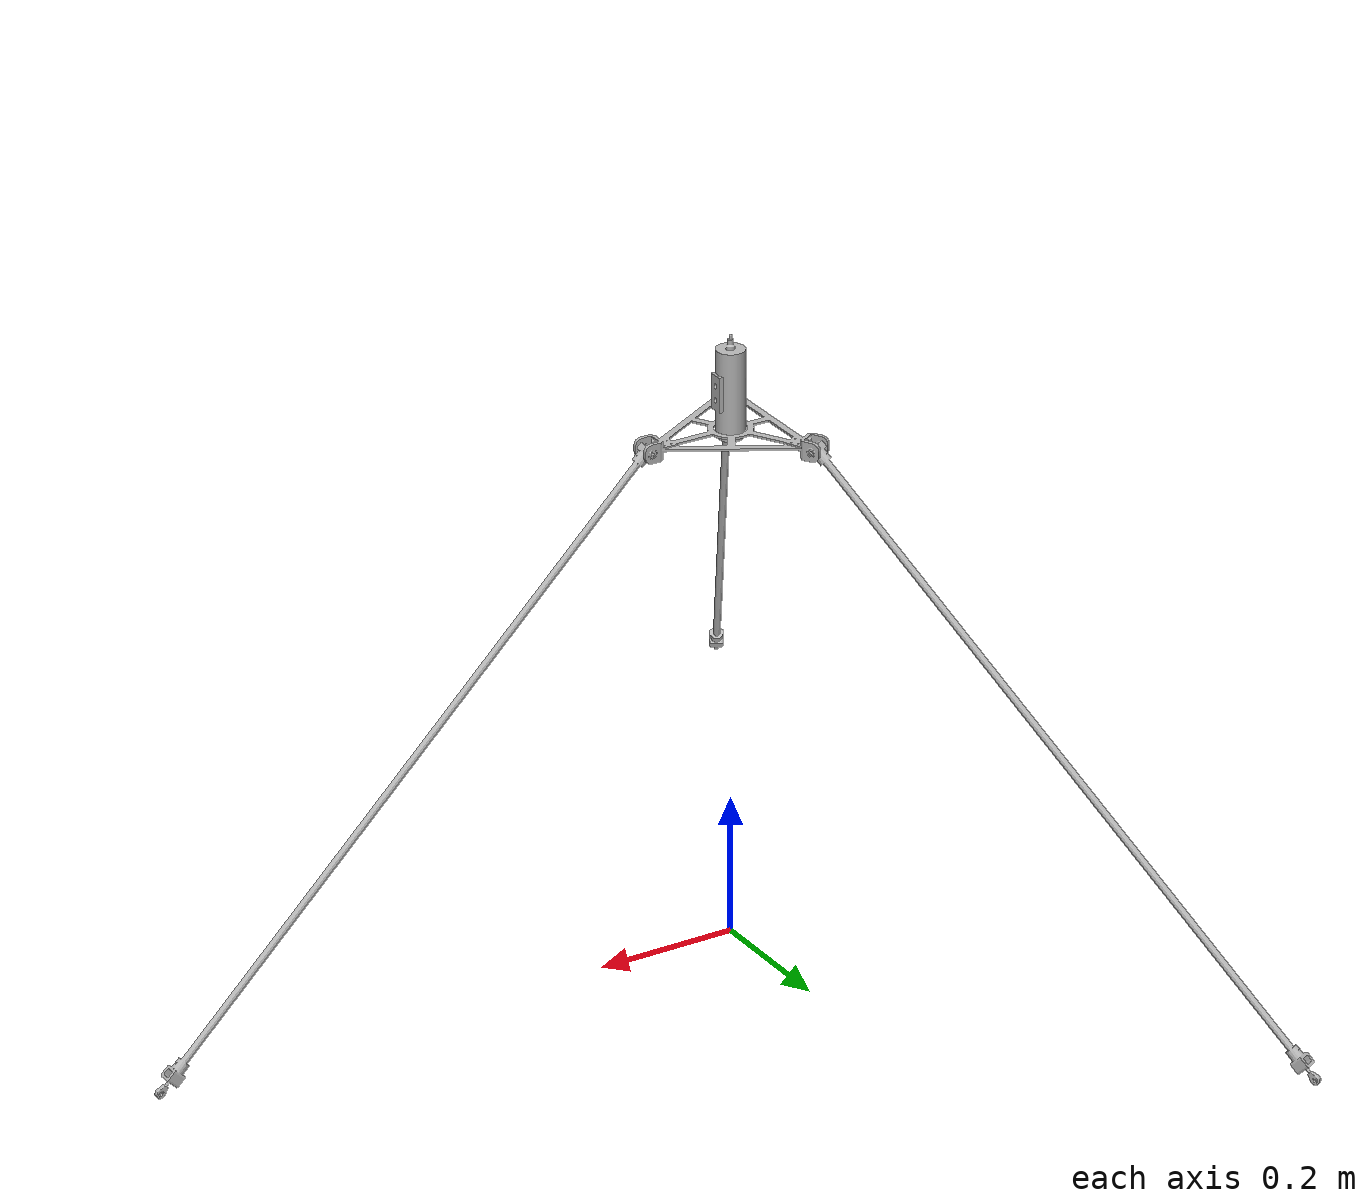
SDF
<sdf version='1.7'>
  <model name='fpr'>
    <link name="platform">
        <pose>0 0 0.7375123727775691 0 0 0</pose>
        <inertial>
            <pose>0 0 0 0 -0 0</pose>
            <mass>0.215</mass>
            <inertia>
              <ixx>5.427e-4</ixx>
              <ixy>0</ixy>
              <ixz>0</ixz>
              <iyy>5.427e-4</iyy>
              <iyz>0</iyz>
              <izz>0.001</izz>
            </inertia>
        </inertial>
        <visual name="platform_visual">
            <pose>0 0 0 0 -0 0</pose>
            <geometry>
                <mesh>
                    <scale>0.001 0.001 0.001</scale>
                    <uri>model://fpr_interaction/meshes/platform.stl</uri>
                </mesh>
            </geometry>
        </visual>
        <collision name='platform_inertia_collision'>
            <pose>0 0 0 0 0 0</pose>
            <geometry>
                <mesh>
                    <scale>0.001 0.001 0.001</scale>
                    <uri>model://fpr_interaction/meshes/platform.stl</uri>
                </mesh>
            </geometry>
        </collision>
        <visual name="tool_visual">
            <pose>0 0 0 0 0 0</pose>
            <geometry>
                <mesh>
                    <scale>0.001 0.001 0.001</scale>
                    <uri>model://fpr_interaction/meshes/tool.stl</uri>
                </mesh>
            </geometry>
        </visual>
        <collision name='tool_inertia_collision'>
            <pose>0 0 0.027 0 0 0</pose>
            <geometry>
                <cylinder>
                    <radius>0.0022</radius>
                    <length>0.02</length>
                </cylinder>
            </geometry>
        </collision>
        <collision name='tool_inertia_collision_2'>
            <pose>0 0 0.05 0 0 0</pose>
            <geometry>
                <cylinder>
                    <radius>0.02</radius>
                    <length>0.127</length>
                </cylinder>
            </geometry>
        </collision>
        <sensor name='fpr_contact' type='contact'>
            <update_rate>100.0</update_rate>
            <always_on>1</always_on>
            <contact>
                <collision>tool_inertia_collision</collision>
                <topic>/fpr_contact</topic>
            </contact>
            <plugin name='fpr_contact_sensor' filename='libfpr_contact_sensor.so'/>
            <plugin name="gazebo_ros_bumper" filename="libgazebo_ros_bumper.so">
                <ros>
                    <argument>bumper_states:=fpr_contact_gz</argument>
                </ros>
                <frameName>world</frameName>
            </plugin>
        </sensor>
        <gravity>1</gravity>
    </link>
    <link name="leg1">
        <pose>0.48408892449920654 0 0.38042344827836255 0 0.7853981633974483 0</pose>
        <inertial>
            <pose>0.094 0 0 0 -0 0</pose>
            <mass>0.073</mass>
            <inertia>
              <ixx>1.5707e-6</ixx>
              <ixy>0</ixy>
              <ixz>0</ixz>
              <iyy>0.035</iyy>
              <iyz>0</iyz>
              <izz>0.035</izz>
            </inertia>
        </inertial>
        <visual name="leg1_visual">
            <pose>0 0 0 0 -0 0</pose>
            <geometry>
                <mesh>
                    <scale>0.001 0.001 0.001</scale>
                    <uri>model://fpr_interaction/meshes/leg.stl</uri>
                </mesh>
            </geometry>
        </visual>
        <collision name='leg1_inertia_collision'>
            <pose>0 0 0 0 1.570796325 0</pose>
            <geometry>
                <cylinder>
                    <radius>0.005</radius>
                    <length>1.0</length>
                </cylinder>
            </geometry>
        </collision>
        <gravity>1</gravity>
    </link>
    <link name="leg2">
        <pose>-0.24204446224960316 0.419233306307 0.38042344827836255 0 0.7853981633974483 2.0943951023931953</pose>
        <inertial>
            <pose>0.094 0 0 0 -0 0</pose>
            <mass>0.073</mass>
            <inertia>
              <ixx>1.5707e-6</ixx>
              <ixy>0</ixy>
              <ixz>0</ixz>
              <iyy>0.035</iyy>
              <iyz>0</iyz>
              <izz>0.035</izz>
            </inertia>
        </inertial>
        <visual name="leg2_visual">
            <pose>0 0 0 0 -0 0</pose>
            <geometry>
                <mesh>
                    <scale>0.001 0.001 0.001</scale>
                    <uri>model://fpr_interaction/meshes/leg.stl</uri>
                </mesh>
            </geometry>
        </visual>
        <collision name='leg2_inertia_collision'>
            <pose>0 0 0 0 1.570796325 0</pose>
            <geometry>
                <cylinder>
                    <radius>0.005</radius>
                    <length>1.0</length>
                </cylinder>
            </geometry>
        </collision>
        <gravity>1</gravity>
    </link>
    <link name="leg3">
        <pose>-0.24204446224960316 -0.419233306307 0.38042344827836255 0 0.7853981633974483 -2.0943951023931953</pose>
        <inertial>
            <pose>0.094 0 0 0 -0 0</pose>
            <mass>0.073</mass>
            <inertia>
              <ixx>1.5707e-6</ixx>
              <ixy>0</ixy>
              <ixz>0</ixz>
              <iyy>0.035</iyy>
              <iyz>0</iyz>
              <izz>0.035</izz>
            </inertia>
        </inertial>
        <visual name="leg3_visual">
            <pose>0 0 0 0 -0 0</pose>
            <geometry>
                <mesh>
                    <scale>0.001 0.001 0.001</scale>
                    <uri>model://fpr_interaction/meshes/leg.stl</uri>
                </mesh>
            </geometry>
        </visual>
        <collision name='leg3_inertia_collision'>
            <pose>0 0 0 0 1.570796325 0</pose>
            <geometry>
                <cylinder>
                    <radius>0.005</radius>
                    <length>1.0</length>
                </cylinder>
            </geometry>
        </collision>
        <gravity>1</gravity>
    </link>
    <joint name="revolute_leg_1" type="revolute">
        <child>platform</child>
        <parent>leg1</parent>
        <pose>0.127 0 0</pose>
        <axis>
            <xyz>0 1 0</xyz>
        </axis>
    </joint>
    <joint name="revolute_leg_2" type="revolute">
        <child>platform</child>
        <parent>leg2</parent>
        <pose>-0.06349999999999997 0.10998522628062372 0</pose>
        <axis>
            <xyz>0.8660254037844387 0.4999999999999998 0</xyz>
        </axis>
    </joint>
    <joint name="revolute_leg_3" type="revolute">
        <child>platform</child>
        <parent>leg3</parent>
        <pose>-0.06349999999999997 -0.10998522628062372 0</pose>
        <axis>
            <xyz>0.8660254037844387 -0.4999999999999998 0</xyz>
        </axis>
    </joint>
    <plugin name="gazebo_ros_p3d" filename="libgazebo_ros_p3d.so">
        <ros>
          <namespace>FPR/Mocap</namespace>
        </ros>
        <body_name>platform</body_name>
        <update_rate>100</update_rate>
        <frame_name>world</frame_name>
    </plugin>
    <plugin name='fpr_init' filename='libfpr_init.so'/>
  </model>
</sdf>
